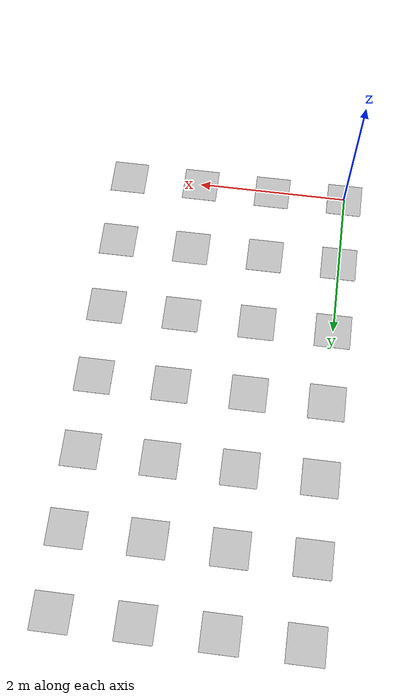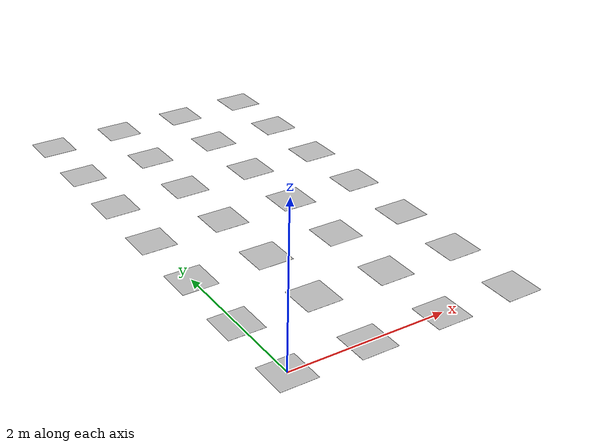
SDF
<?xml version="1.0"?>
<sdf version="1.5">
    <model name="aruco_2_28">
        <static>true</static>
        <link name="aruco_2_28_link">

<visual name="visual_marker_2_0">
    <pose>0.0 6.0 0.0 0.0 0.0 1.57079632679</pose>
    <cast_shadows>false</cast_shadows>
    <geometry>
        <box>
            <size>0.466666666667 0.466666666667 1e-3</size>
        </box>
    </geometry>
    <material>
        <script>
            <uri>model://aruco_aruco_map_txt/materials/scripts</uri>
            <uri>model://aruco_aruco_map_txt/materials/textures</uri>
            <name>aruco/marker_2_0</name>
        </script>
    </material>
</visual>

<visual name="visual_marker_2_1">
    <pose>1.0 6.0 0.0 0.0 0.0 1.57079632679</pose>
    <cast_shadows>false</cast_shadows>
    <geometry>
        <box>
            <size>0.466666666667 0.466666666667 1e-3</size>
        </box>
    </geometry>
    <material>
        <script>
            <uri>model://aruco_aruco_map_txt/materials/scripts</uri>
            <uri>model://aruco_aruco_map_txt/materials/textures</uri>
            <name>aruco/marker_2_1</name>
        </script>
    </material>
</visual>

<visual name="visual_marker_2_2">
    <pose>2.0 6.0 0.0 0.0 0.0 1.57079632679</pose>
    <cast_shadows>false</cast_shadows>
    <geometry>
        <box>
            <size>0.466666666667 0.466666666667 1e-3</size>
        </box>
    </geometry>
    <material>
        <script>
            <uri>model://aruco_aruco_map_txt/materials/scripts</uri>
            <uri>model://aruco_aruco_map_txt/materials/textures</uri>
            <name>aruco/marker_2_2</name>
        </script>
    </material>
</visual>

<visual name="visual_marker_2_3">
    <pose>3.0 6.0 0.0 0.0 0.0 1.57079632679</pose>
    <cast_shadows>false</cast_shadows>
    <geometry>
        <box>
            <size>0.466666666667 0.466666666667 1e-3</size>
        </box>
    </geometry>
    <material>
        <script>
            <uri>model://aruco_aruco_map_txt/materials/scripts</uri>
            <uri>model://aruco_aruco_map_txt/materials/textures</uri>
            <name>aruco/marker_2_3</name>
        </script>
    </material>
</visual>

<visual name="visual_marker_2_4">
    <pose>0.0 5.0 0.0 0.0 0.0 1.57079632679</pose>
    <cast_shadows>false</cast_shadows>
    <geometry>
        <box>
            <size>0.466666666667 0.466666666667 1e-3</size>
        </box>
    </geometry>
    <material>
        <script>
            <uri>model://aruco_aruco_map_txt/materials/scripts</uri>
            <uri>model://aruco_aruco_map_txt/materials/textures</uri>
            <name>aruco/marker_2_4</name>
        </script>
    </material>
</visual>

<visual name="visual_marker_2_5">
    <pose>1.0 5.0 0.0 0.0 0.0 1.57079632679</pose>
    <cast_shadows>false</cast_shadows>
    <geometry>
        <box>
            <size>0.466666666667 0.466666666667 1e-3</size>
        </box>
    </geometry>
    <material>
        <script>
            <uri>model://aruco_aruco_map_txt/materials/scripts</uri>
            <uri>model://aruco_aruco_map_txt/materials/textures</uri>
            <name>aruco/marker_2_5</name>
        </script>
    </material>
</visual>

<visual name="visual_marker_2_6">
    <pose>2.0 5.0 0.0 0.0 0.0 1.57079632679</pose>
    <cast_shadows>false</cast_shadows>
    <geometry>
        <box>
            <size>0.466666666667 0.466666666667 1e-3</size>
        </box>
    </geometry>
    <material>
        <script>
            <uri>model://aruco_aruco_map_txt/materials/scripts</uri>
            <uri>model://aruco_aruco_map_txt/materials/textures</uri>
            <name>aruco/marker_2_6</name>
        </script>
    </material>
</visual>

<visual name="visual_marker_2_7">
    <pose>3.0 5.0 0.0 0.0 0.0 1.57079632679</pose>
    <cast_shadows>false</cast_shadows>
    <geometry>
        <box>
            <size>0.466666666667 0.466666666667 1e-3</size>
        </box>
    </geometry>
    <material>
        <script>
            <uri>model://aruco_aruco_map_txt/materials/scripts</uri>
            <uri>model://aruco_aruco_map_txt/materials/textures</uri>
            <name>aruco/marker_2_7</name>
        </script>
    </material>
</visual>

<visual name="visual_marker_2_8">
    <pose>0.0 4.0 0.0 0.0 0.0 1.57079632679</pose>
    <cast_shadows>false</cast_shadows>
    <geometry>
        <box>
            <size>0.466666666667 0.466666666667 1e-3</size>
        </box>
    </geometry>
    <material>
        <script>
            <uri>model://aruco_aruco_map_txt/materials/scripts</uri>
            <uri>model://aruco_aruco_map_txt/materials/textures</uri>
            <name>aruco/marker_2_8</name>
        </script>
    </material>
</visual>

<visual name="visual_marker_2_9">
    <pose>1.0 4.0 0.0 0.0 0.0 1.57079632679</pose>
    <cast_shadows>false</cast_shadows>
    <geometry>
        <box>
            <size>0.466666666667 0.466666666667 1e-3</size>
        </box>
    </geometry>
    <material>
        <script>
            <uri>model://aruco_aruco_map_txt/materials/scripts</uri>
            <uri>model://aruco_aruco_map_txt/materials/textures</uri>
            <name>aruco/marker_2_9</name>
        </script>
    </material>
</visual>

<visual name="visual_marker_2_10">
    <pose>2.0 4.0 0.0 0.0 0.0 1.57079632679</pose>
    <cast_shadows>false</cast_shadows>
    <geometry>
        <box>
            <size>0.466666666667 0.466666666667 1e-3</size>
        </box>
    </geometry>
    <material>
        <script>
            <uri>model://aruco_aruco_map_txt/materials/scripts</uri>
            <uri>model://aruco_aruco_map_txt/materials/textures</uri>
            <name>aruco/marker_2_10</name>
        </script>
    </material>
</visual>

<visual name="visual_marker_2_11">
    <pose>3.0 4.0 0.0 0.0 0.0 1.57079632679</pose>
    <cast_shadows>false</cast_shadows>
    <geometry>
        <box>
            <size>0.466666666667 0.466666666667 1e-3</size>
        </box>
    </geometry>
    <material>
        <script>
            <uri>model://aruco_aruco_map_txt/materials/scripts</uri>
            <uri>model://aruco_aruco_map_txt/materials/textures</uri>
            <name>aruco/marker_2_11</name>
        </script>
    </material>
</visual>

<visual name="visual_marker_2_12">
    <pose>0.0 3.0 0.0 0.0 0.0 1.57079632679</pose>
    <cast_shadows>false</cast_shadows>
    <geometry>
        <box>
            <size>0.466666666667 0.466666666667 1e-3</size>
        </box>
    </geometry>
    <material>
        <script>
            <uri>model://aruco_aruco_map_txt/materials/scripts</uri>
            <uri>model://aruco_aruco_map_txt/materials/textures</uri>
            <name>aruco/marker_2_12</name>
        </script>
    </material>
</visual>

<visual name="visual_marker_2_13">
    <pose>1.0 3.0 0.0 0.0 0.0 1.57079632679</pose>
    <cast_shadows>false</cast_shadows>
    <geometry>
        <box>
            <size>0.466666666667 0.466666666667 1e-3</size>
        </box>
    </geometry>
    <material>
        <script>
            <uri>model://aruco_aruco_map_txt/materials/scripts</uri>
            <uri>model://aruco_aruco_map_txt/materials/textures</uri>
            <name>aruco/marker_2_13</name>
        </script>
    </material>
</visual>

<visual name="visual_marker_2_14">
    <pose>2.0 3.0 0.0 0.0 0.0 1.57079632679</pose>
    <cast_shadows>false</cast_shadows>
    <geometry>
        <box>
            <size>0.466666666667 0.466666666667 1e-3</size>
        </box>
    </geometry>
    <material>
        <script>
            <uri>model://aruco_aruco_map_txt/materials/scripts</uri>
            <uri>model://aruco_aruco_map_txt/materials/textures</uri>
            <name>aruco/marker_2_14</name>
        </script>
    </material>
</visual>

<visual name="visual_marker_2_15">
    <pose>3.0 3.0 0.0 0.0 0.0 1.57079632679</pose>
    <cast_shadows>false</cast_shadows>
    <geometry>
        <box>
            <size>0.466666666667 0.466666666667 1e-3</size>
        </box>
    </geometry>
    <material>
        <script>
            <uri>model://aruco_aruco_map_txt/materials/scripts</uri>
            <uri>model://aruco_aruco_map_txt/materials/textures</uri>
            <name>aruco/marker_2_15</name>
        </script>
    </material>
</visual>

<visual name="visual_marker_2_16">
    <pose>0.0 2.0 0.0 0.0 0.0 1.57079632679</pose>
    <cast_shadows>false</cast_shadows>
    <geometry>
        <box>
            <size>0.466666666667 0.466666666667 1e-3</size>
        </box>
    </geometry>
    <material>
        <script>
            <uri>model://aruco_aruco_map_txt/materials/scripts</uri>
            <uri>model://aruco_aruco_map_txt/materials/textures</uri>
            <name>aruco/marker_2_16</name>
        </script>
    </material>
</visual>

<visual name="visual_marker_2_17">
    <pose>1.0 2.0 0.0 0.0 0.0 1.57079632679</pose>
    <cast_shadows>false</cast_shadows>
    <geometry>
        <box>
            <size>0.466666666667 0.466666666667 1e-3</size>
        </box>
    </geometry>
    <material>
        <script>
            <uri>model://aruco_aruco_map_txt/materials/scripts</uri>
            <uri>model://aruco_aruco_map_txt/materials/textures</uri>
            <name>aruco/marker_2_17</name>
        </script>
    </material>
</visual>

<visual name="visual_marker_2_18">
    <pose>2.0 2.0 0.0 0.0 0.0 1.57079632679</pose>
    <cast_shadows>false</cast_shadows>
    <geometry>
        <box>
            <size>0.466666666667 0.466666666667 1e-3</size>
        </box>
    </geometry>
    <material>
        <script>
            <uri>model://aruco_aruco_map_txt/materials/scripts</uri>
            <uri>model://aruco_aruco_map_txt/materials/textures</uri>
            <name>aruco/marker_2_18</name>
        </script>
    </material>
</visual>

<visual name="visual_marker_2_19">
    <pose>3.0 2.0 0.0 0.0 0.0 1.57079632679</pose>
    <cast_shadows>false</cast_shadows>
    <geometry>
        <box>
            <size>0.466666666667 0.466666666667 1e-3</size>
        </box>
    </geometry>
    <material>
        <script>
            <uri>model://aruco_aruco_map_txt/materials/scripts</uri>
            <uri>model://aruco_aruco_map_txt/materials/textures</uri>
            <name>aruco/marker_2_19</name>
        </script>
    </material>
</visual>

<visual name="visual_marker_2_20">
    <pose>0.0 1.0 0.0 0.0 0.0 1.57079632679</pose>
    <cast_shadows>false</cast_shadows>
    <geometry>
        <box>
            <size>0.466666666667 0.466666666667 1e-3</size>
        </box>
    </geometry>
    <material>
        <script>
            <uri>model://aruco_aruco_map_txt/materials/scripts</uri>
            <uri>model://aruco_aruco_map_txt/materials/textures</uri>
            <name>aruco/marker_2_20</name>
        </script>
    </material>
</visual>

<visual name="visual_marker_2_21">
    <pose>1.0 1.0 0.0 0.0 0.0 1.57079632679</pose>
    <cast_shadows>false</cast_shadows>
    <geometry>
        <box>
            <size>0.466666666667 0.466666666667 1e-3</size>
        </box>
    </geometry>
    <material>
        <script>
            <uri>model://aruco_aruco_map_txt/materials/scripts</uri>
            <uri>model://aruco_aruco_map_txt/materials/textures</uri>
            <name>aruco/marker_2_21</name>
        </script>
    </material>
</visual>

<visual name="visual_marker_2_22">
    <pose>2.0 1.0 0.0 0.0 0.0 1.57079632679</pose>
    <cast_shadows>false</cast_shadows>
    <geometry>
        <box>
            <size>0.466666666667 0.466666666667 1e-3</size>
        </box>
    </geometry>
    <material>
        <script>
            <uri>model://aruco_aruco_map_txt/materials/scripts</uri>
            <uri>model://aruco_aruco_map_txt/materials/textures</uri>
            <name>aruco/marker_2_22</name>
        </script>
    </material>
</visual>

<visual name="visual_marker_2_23">
    <pose>3.0 1.0 0.0 0.0 0.0 1.57079632679</pose>
    <cast_shadows>false</cast_shadows>
    <geometry>
        <box>
            <size>0.466666666667 0.466666666667 1e-3</size>
        </box>
    </geometry>
    <material>
        <script>
            <uri>model://aruco_aruco_map_txt/materials/scripts</uri>
            <uri>model://aruco_aruco_map_txt/materials/textures</uri>
            <name>aruco/marker_2_23</name>
        </script>
    </material>
</visual>

<visual name="visual_marker_2_24">
    <pose>0.0 0.0 0.0 0.0 0.0 1.57079632679</pose>
    <cast_shadows>false</cast_shadows>
    <geometry>
        <box>
            <size>0.466666666667 0.466666666667 1e-3</size>
        </box>
    </geometry>
    <material>
        <script>
            <uri>model://aruco_aruco_map_txt/materials/scripts</uri>
            <uri>model://aruco_aruco_map_txt/materials/textures</uri>
            <name>aruco/marker_2_24</name>
        </script>
    </material>
</visual>

<visual name="visual_marker_2_25">
    <pose>1.0 0.0 0.0 0.0 0.0 1.57079632679</pose>
    <cast_shadows>false</cast_shadows>
    <geometry>
        <box>
            <size>0.466666666667 0.466666666667 1e-3</size>
        </box>
    </geometry>
    <material>
        <script>
            <uri>model://aruco_aruco_map_txt/materials/scripts</uri>
            <uri>model://aruco_aruco_map_txt/materials/textures</uri>
            <name>aruco/marker_2_25</name>
        </script>
    </material>
</visual>

<visual name="visual_marker_2_26">
    <pose>2.0 0.0 0.0 0.0 0.0 1.57079632679</pose>
    <cast_shadows>false</cast_shadows>
    <geometry>
        <box>
            <size>0.466666666667 0.466666666667 1e-3</size>
        </box>
    </geometry>
    <material>
        <script>
            <uri>model://aruco_aruco_map_txt/materials/scripts</uri>
            <uri>model://aruco_aruco_map_txt/materials/textures</uri>
            <name>aruco/marker_2_26</name>
        </script>
    </material>
</visual>

<visual name="visual_marker_2_27">
    <pose>3.0 0.0 0.0 0.0 0.0 1.57079632679</pose>
    <cast_shadows>false</cast_shadows>
    <geometry>
        <box>
            <size>0.466666666667 0.466666666667 1e-3</size>
        </box>
    </geometry>
    <material>
        <script>
            <uri>model://aruco_aruco_map_txt/materials/scripts</uri>
            <uri>model://aruco_aruco_map_txt/materials/textures</uri>
            <name>aruco/marker_2_27</name>
        </script>
    </material>
</visual>

        </link>
    </model>
</sdf>
